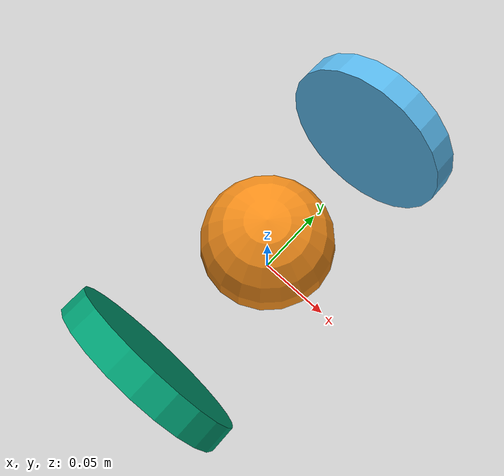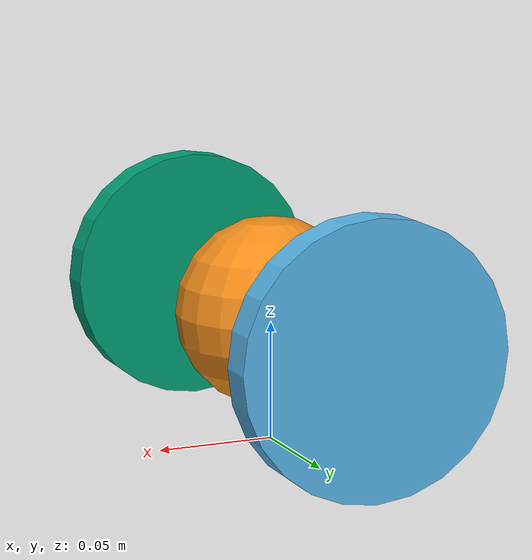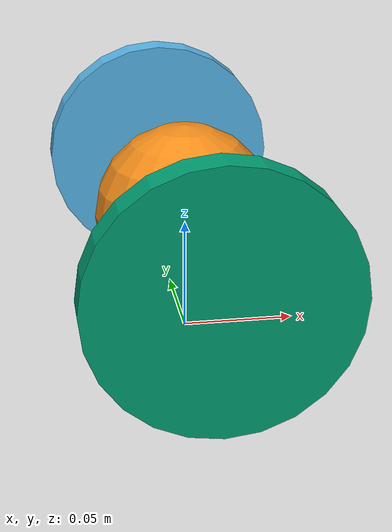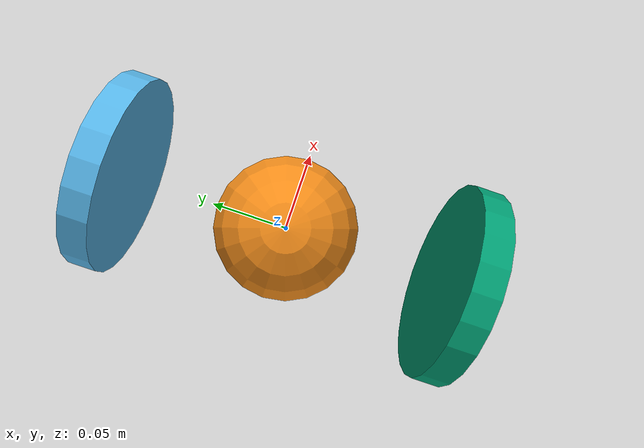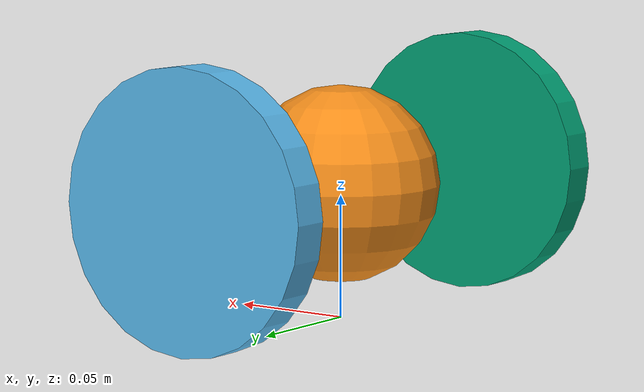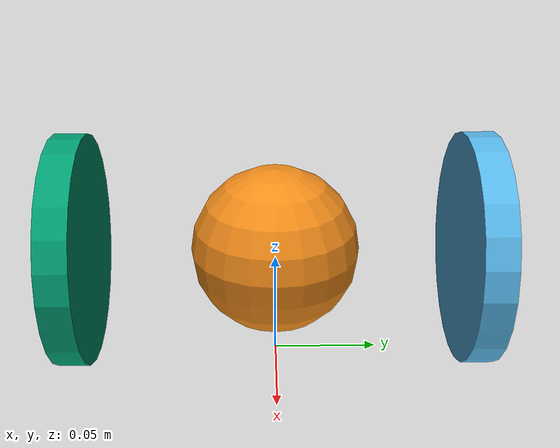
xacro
<?xml version='1.0'?>

<robot name="myrobot" xmlns:xacro="http://www.ros.org/wiki/xacro">

  <xacro:include filename="$(find rossumo_description)/urdf/rossumo.gazebo" />
  <xacro:include filename="$(find rossumo_description)/urdf/materials.xacro" />
  <xacro:include filename="$(find rossumo_description)/urdf/macros.xacro" />

  <xacro:property name="M_PI" value="3.1415926535897931" />
  <link name='chassis'>
    <pose>0 0 0.1 0 0 0</pose>

    <inertial>
      <mass value="0.16"/>
        <origin xyz="0.0 0 0.055" rpy="0 0 0"/>
      <inertia
          ixx="0.00036" ixy="0.00" ixz="0.00"
          iyy="0.00036" iyz="0.00"
          izz="0.00036"
      />
    </inertial>

    <collision name='collision'>
        <origin xyz="0.0 0 0.055" rpy="0 0 0"/>
      <geometry>
        <sphere radius="0.04" />
      </geometry>
    </collision>

    <visual name='chassis_visual'>
        <origin xyz="0.0 0 0.055" rpy="0 0 0"/>
      <geometry>
        <sphere radius="0.04" />
      </geometry>
    </visual>

  </link>

  <joint type="continuous" name="left_wheel_hinge">
     <origin xyz="0.00 0.095 0.055" rpy="${-M_PI/2} 0 0"/>
      <axis xyz="0 0 1"/>
     <child link="left_wheel"/>
    <parent link="chassis"/>
    <limit effort="100" velocity="100"/>
    <joint_properties damping="0.0" friction="0.0"/>
  </joint>
  <link name="left_wheel">
    <!--origin xyz="0.1 0.13 0.1" rpy="0 1.5707 1.5707"/-->
    <collision name="collision">
         <origin xyz="0 0 0" rpy="0 0 0"/>
     <geometry>
        <cylinder length="0.015" radius="0.055"/>
       </geometry>
   </collision>
    <visual name="left_wheel_visual">
         <origin xyz="0 0 0" rpy="0 0 0"/>
     <geometry>
        <cylinder length="0.015" radius="0.055"/>
       </geometry>
    </visual>
    <inertial>
         <origin xyz="0 0 0" rpy="0 0 0"/>
         <mass value="0.01" />
      <inertia ixx="0.001" ixy="0.0" ixz="0.0"
                 iyy="0.001" iyz="0.0"
                 izz="0.001" />
    </inertial>
  </link>

  <joint type="continuous" name="right_wheel_hinge">
      <origin xyz="0.00 -0.095 0.055" rpy="${-M_PI/2} 0 0"/>
      <axis xyz="0 0 1"/>
    <child link="right_wheel"/>
    <parent link="chassis"/>
    <limit effort="100" velocity="100"/>
    <joint_properties damping="0.0" friction="0.0"/>
  </joint>
  <link name="right_wheel">
    <!--origin xyz="0.1 -0.13 0.1" rpy="0 1.5707 1.5707"/-->
    <collision name="collision">
         <origin xyz="0 0 0" rpy="0 0 0"/>
     <geometry>
        <cylinder length="0.015" radius="0.055"/>
       </geometry>
    </collision>
    <visual name="right_wheel_visual">
         <origin xyz="0 0 0" rpy="0 0 0"/>
     <geometry>
        <cylinder length="0.015" radius="0.055"/>
       </geometry>
    </visual>
    <inertial>
         <origin xyz="0 0 0" rpy="0 0 0"/>
         <mass value="0.01" />
      <inertia ixx="0.001" ixy="0.0" ixz="0.0"
                 iyy="0.001" iyz="0.0"
                 izz="0.001" />
    </inertial>
  </link>

</robot>
